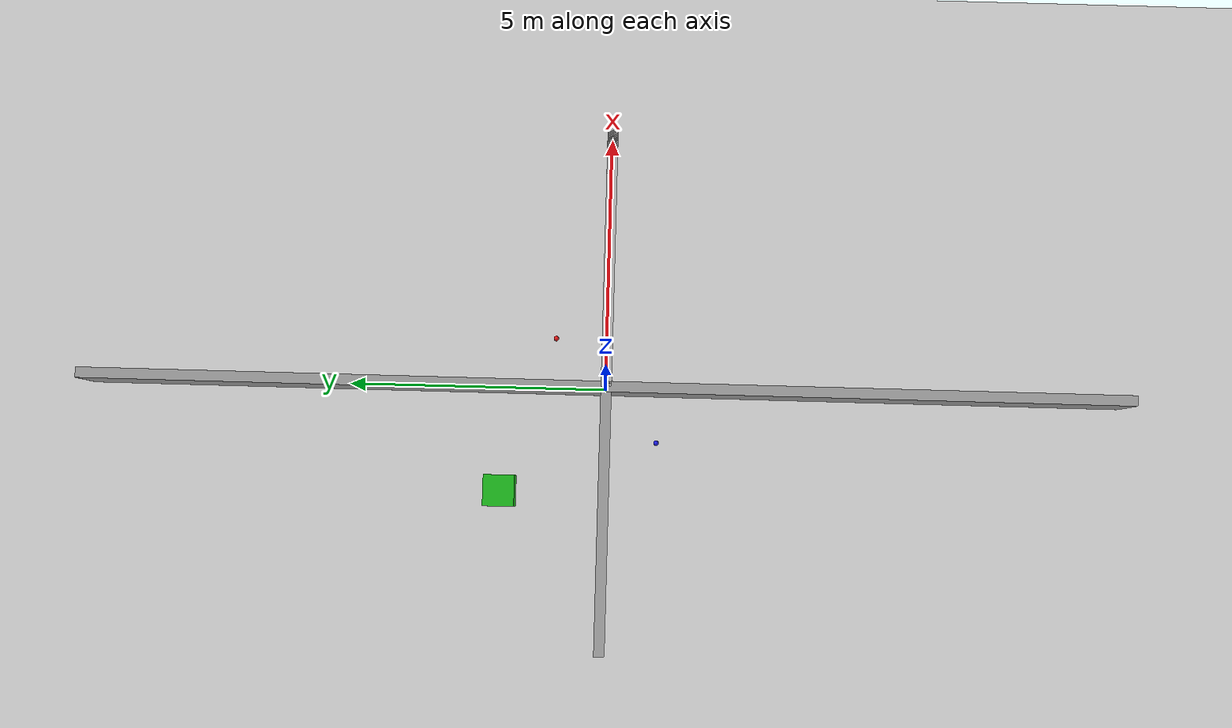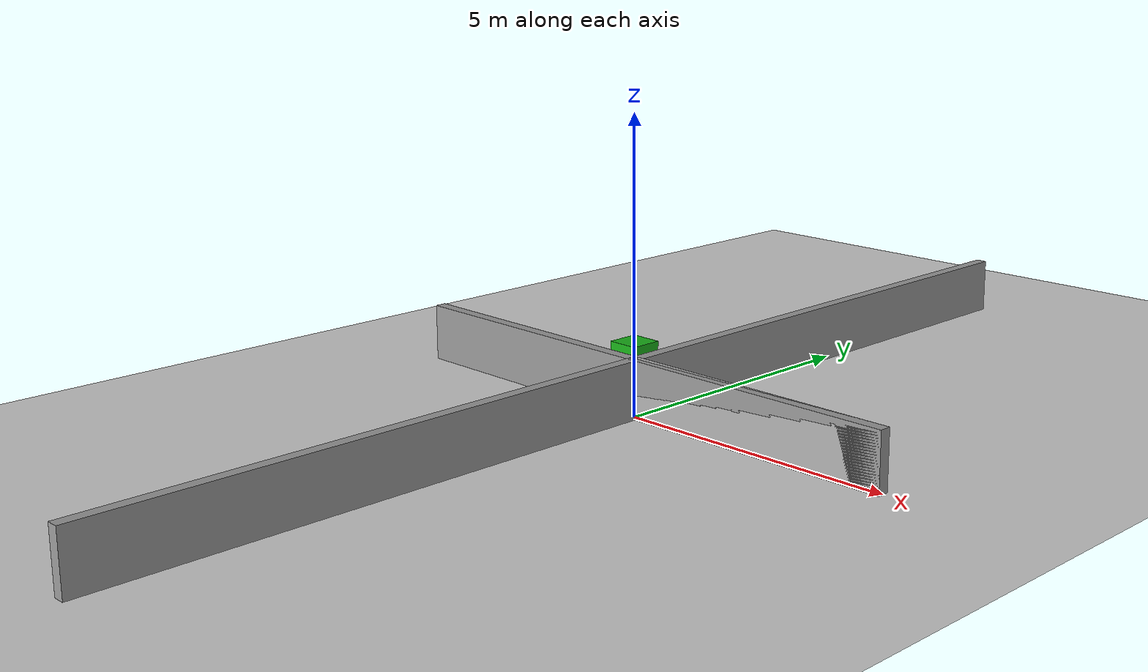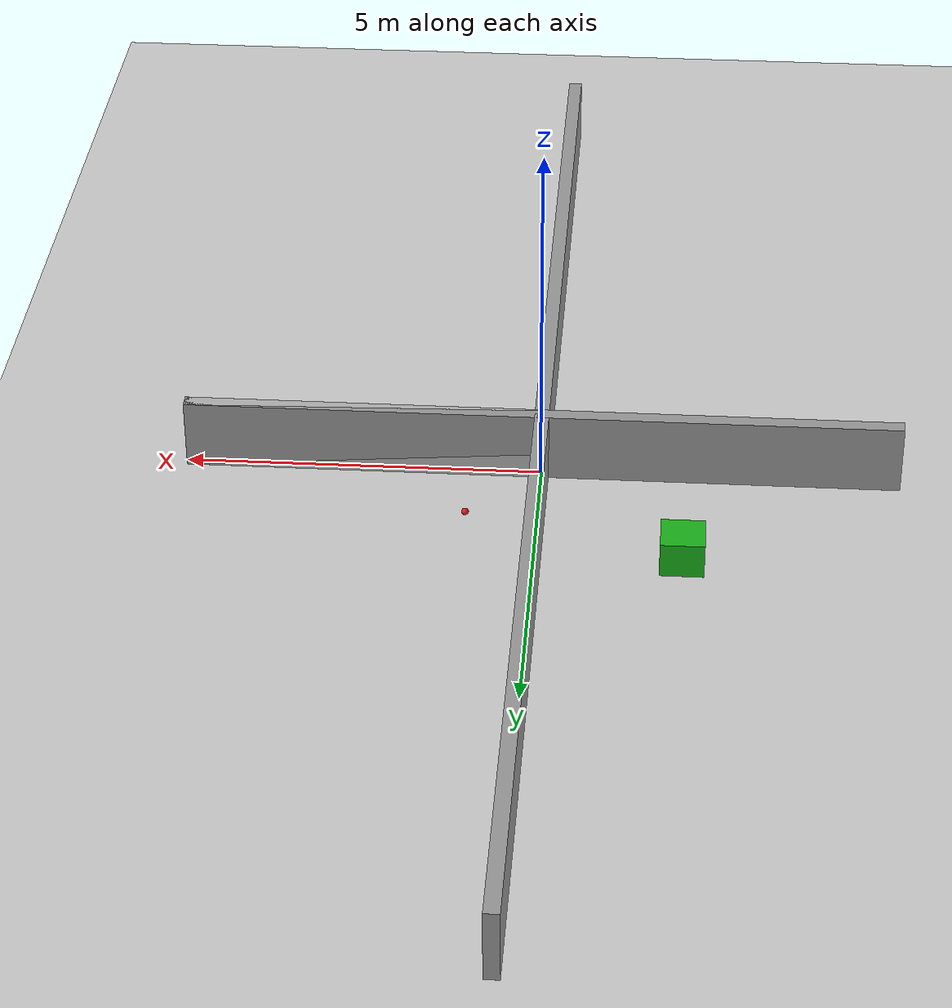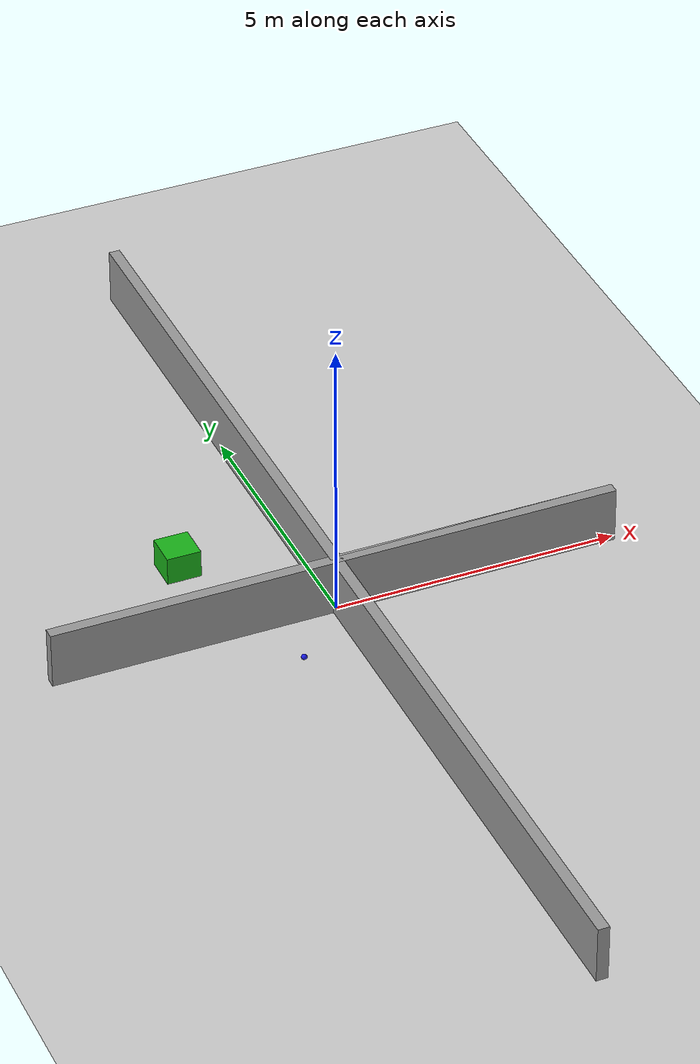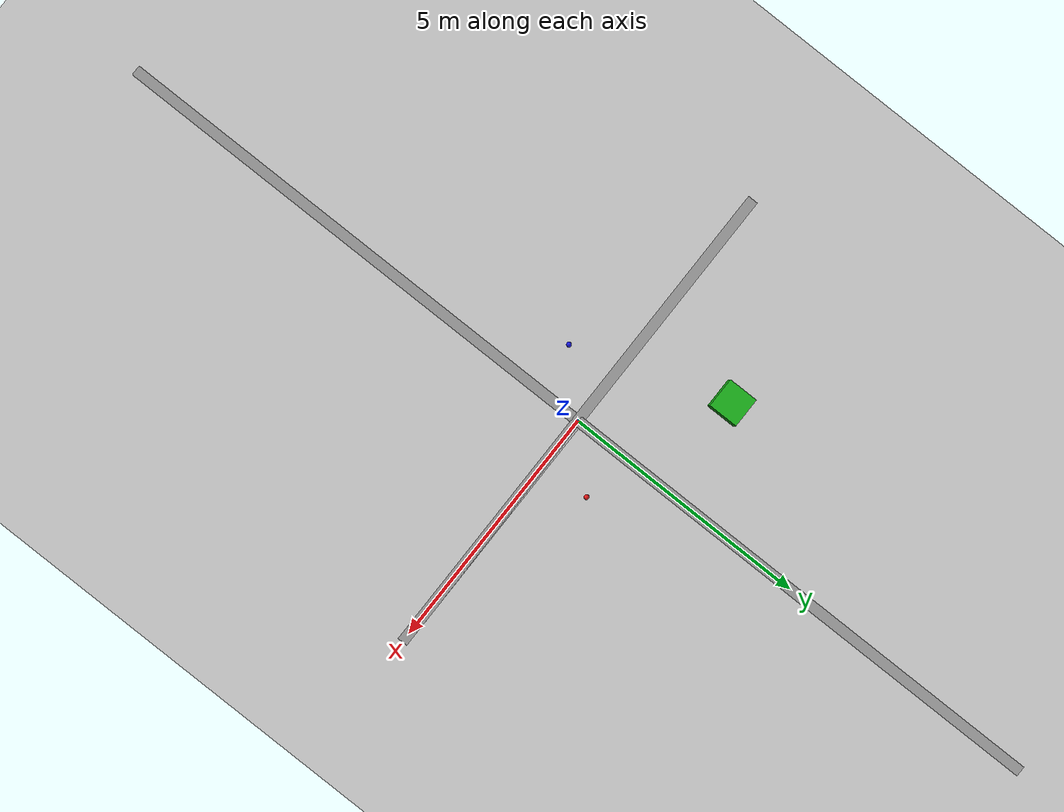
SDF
<?xml version="1.0"?>
<sdf version="1.9">
  <world name="maze_world">
    <gravity>0 0 -9.8</gravity>

    <include>
      <uri>model://ground_plane</uri>
    </include>
    <include>
      <uri>model://sun</uri>
    </include>

    <!-- Simple maze walls -->
    <model name="wall_long_1">
      <pose>0 0 0 0 0 0</pose>
      <link name="link">
        <pose>0 0 0.5 0 0 0</pose>
        <collision name="collision">
          <geometry>
            <box>
              <size>10 0.2 1</size>
            </box>
          </geometry>
        </collision>
        <visual name="visual">
          <geometry>
            <box>
              <size>10 0.2 1</size>
            </box>
          </geometry>
          <material>
            <ambient>0.6 0.6 0.6 1</ambient>
            <diffuse>0.6 0.6 0.6 1</diffuse>
          </material>
        </visual>
      </link>
      <static>true</static>
    </model>

    <model name="wall_long_2">
      <pose>0 5 0 0 0 1.5707</pose>
      <link name="link">
        <pose>0 0 0.5 0 0 0</pose>
        <collision name="collision">
          <geometry>
            <box>
              <size>10 0.2 1</size>
            </box>
          </geometry>
        </collision>
        <visual name="visual">
          <geometry>
            <box>
              <size>10 0.2 1</size>
            </box>
          </geometry>
          <material>
            <ambient>0.6 0.6 0.6 1</ambient>
            <diffuse>0.6 0.6 0.6 1</diffuse>
          </material>
        </visual>
      </link>
      <static>true</static>
    </model>

    <model name="wall_long_3">
      <pose>0 -5 0 0 0 1.5707</pose>
      <link name="link">
        <pose>0 0 0.5 0 0 0</pose>
        <collision name="collision">
          <geometry>
            <box>
              <size>10 0.2 1</size>
            </box>
          </geometry>
        </collision>
        <visual name="visual">
          <geometry>
            <box>
              <size>10 0.2 1</size>
            </box>
          </geometry>
          <material>
            <ambient>0.6 0.6 0.6 1</ambient>
            <diffuse>0.6 0.6 0.6 1</diffuse>
          </material>
        </visual>
      </link>
      <static>true</static>
    </model>

    <model name="wall_mid_1">
      <pose>2.5 0 0 0 0 0</pose>
      <link name="link">
        <pose>0 0 0.5 0 0 0</pose>
        <collision name="collision">
          <geometry>
            <box>
              <size>5 0.2 1</size>
            </box>
          </geometry>
        </collision>
        <visual name="visual">
          <geometry>
            <box>
              <size>5 0.2 1</size>
            </box>
          </geometry>
          <material>
            <ambient>0.7 0.7 0.7 1</ambient>
            <diffuse>0.7 0.7 0.7 1</diffuse>
          </material>
        </visual>
      </link>
      <static>true</static>
    </model>

    <!-- Collectible objects -->
    <model name="collectible_1">
      <pose>1 1 0 0 0 0</pose>
      <link name="link">
        <inertial>
          <mass>0.1</mass>
        </inertial>
        <collision name="collision">
          <geometry>
            <sphere>
              <radius>0.05</radius>
            </sphere>
          </geometry>
        </collision>
        <visual name="visual">
          <geometry>
            <sphere>
              <radius>0.05</radius>
            </sphere>
          </geometry>
          <material>
            <ambient>0.9 0.1 0.1 1</ambient>
            <diffuse>0.9 0.1 0.1 1</diffuse>
          </material>
        </visual>
      </link>
    </model>

    <model name="collectible_2">
      <pose>-1 -1 0 0 0 0</pose>
      <link name="link">
        <inertial>
          <mass>0.1</mass>
        </inertial>
        <collision name="collision">
          <geometry>
            <sphere>
              <radius>0.05</radius>
            </sphere>
          </geometry>
        </collision>
        <visual name="visual">
          <geometry>
            <sphere>
              <radius>0.05</radius>
            </sphere>
          </geometry>
          <material>
            <ambient>0.1 0.1 0.9 1</ambient>
            <diffuse>0.1 0.1 0.9 1</diffuse>
          </material>
        </visual>
      </link>
    </model>

    <!-- Drop box -->
    <model name="drop_box">
      <pose>-2 2 0 0 0 0</pose>
      <link name="link">
        <pose>0 0 0.25 0 0 0</pose>
        <collision name="collision">
          <geometry>
            <box>
              <size>0.6 0.6 0.5</size>
            </box>
          </geometry>
        </collision>
        <visual name="visual">
          <geometry>
            <box>
              <size>0.6 0.6 0.5</size>
            </box>
          </geometry>
          <material>
            <ambient>0.1 0.7 0.1 1</ambient>
            <diffuse>0.1 0.7 0.1 1</diffuse>
          </material>
        </visual>
      </link>
      <static>true</static>
    </model>

  </world>
</sdf>
